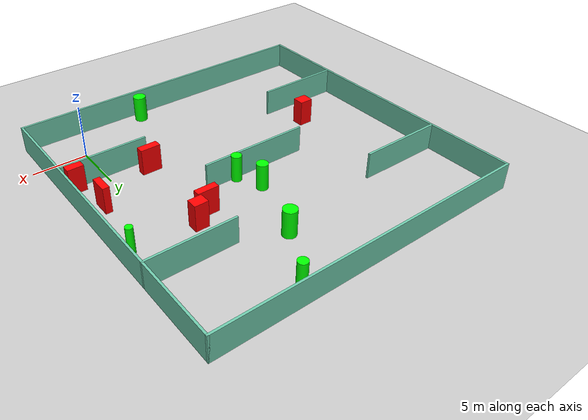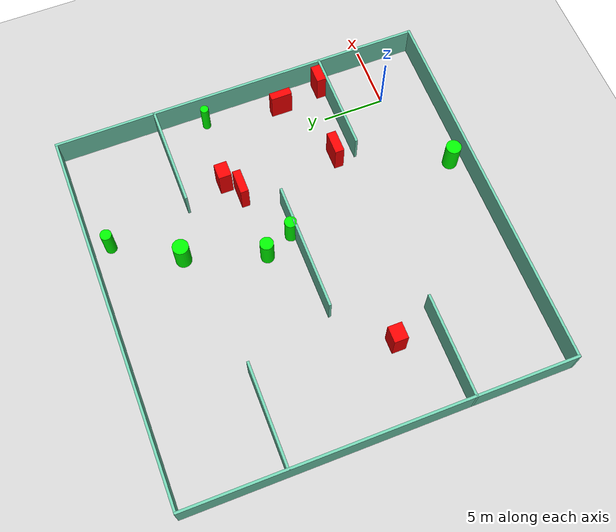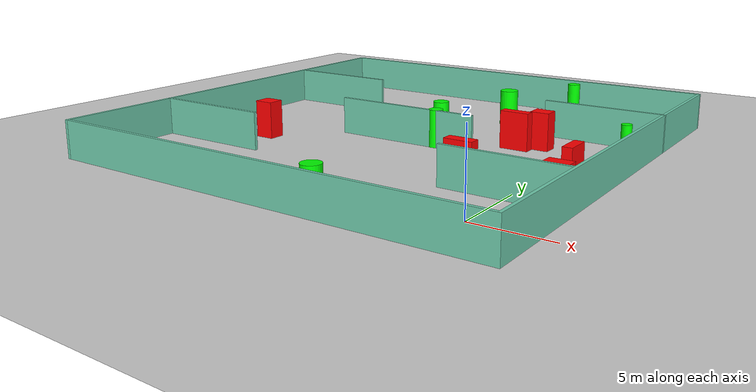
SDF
<sdf version="1.7">
 <world name="default">
  <light name="sun" type="directional">
   <pose>0 0 10 0 -0 0</pose>
   <diffuse>0.8 0.8 0.8 1</diffuse>
   <specular>0.2 0.2 0.2 1</specular>
   <attenuation>
    <range>1000</range>
    <constant>0.9</constant>
    <linear>0.01</linear>
    <quadratic>0.001</quadratic>
   </attenuation>
   <direction>-0.5 0.1 -0.9</direction>
   <spot><inner_angle>0</inner_angle><outer_angle>0</outer_angle><falloff>0</falloff></spot>
  </light>
  <model name="ground_plane">
   <static>1</static>
   <link name="link">
    <collision name="collision">
     <geometry><plane><normal>0 0 1</normal><size>100 100</size></plane></geometry>
     <surface>
      <contact><collide_bitmask>65535</collide_bitmask></contact>
      <friction><ode><mu>100</mu><mu2>50</mu2></ode></friction>
     </surface>
    </collision>
    <visual name="visual">
     <cast_shadows>0</cast_shadows>
     <geometry><plane><normal>0 0 1</normal><size>100 100</size></plane></geometry>
     <material>
      <script><uri>file://media/materials/scripts/gazebo.material</uri><name>Gazebo/Grey</name></script>
     </material>
    </visual>
   </link>
  </model>
  <gravity>0 0 -9.8</gravity>
  <magnetic_field>6e-06 2.3e-05 -4.2e-05</magnetic_field>
  <atmosphere type="adiabatic"/>
  <physics type="ode">
   <max_step_size>0.001</max_step_size>
   <real_time_factor>1</real_time_factor>
   <real_time_update_rate>1000</real_time_update_rate>
  </physics>
  <scene><ambient>0.4 0.4 0.4 1</ambient><background>0.7 0.7 0.7 1</background><shadows>1</shadows></scene>
  <spherical_coordinates>
   <surface_model>EARTH_WGS84</surface_model>
   <latitude_deg>0</latitude_deg>
   <longitude_deg>0</longitude_deg>
   <elevation>0</elevation>
   <heading_deg>0</heading_deg>
  </spherical_coordinates>
  <model name="my_base_walls">
   <link name="Wall_10">
    <collision name="Wall_10_Collision">
     <geometry><box><size>8.2 0.2 2.5</size></box></geometry>
     <pose>0 0 1.25 0 -0 0</pose>
    </collision>
    <visual name="Wall_10_Visual">
     <pose>0 0 1.25 0 -0 0</pose>
     <geometry><box><size>8.2 0.2 2.5</size></box></geometry>
     <material>
      <script><uri>file://media/materials/scripts/gazebo.material</uri><name>Gazebo/Grey</name></script>
      <ambient>0.435294 0.796078 0.67451 1</ambient>
     </material>
     <meta><layer>0</layer></meta>
    </visual>
    <pose>-11 -7 0 0 -0 0</pose>
   </link>
   <link name="Wall_12">
    <collision name="Wall_12_Collision">
     <geometry><box><size>8.2 0.2 2.5</size></box></geometry>
     <pose>0 0 1.25 0 -0 0</pose>
    </collision>
    <visual name="Wall_12_Visual">
     <pose>0 0 1.25 0 -0 0</pose>
     <geometry><box><size>8.2 0.2 2.5</size></box></geometry>
     <material>
      <script><uri>file://media/materials/scripts/gazebo.material</uri><name>Gazebo/Grey</name></script>
      <ambient>0.435294 0.796078 0.67451 1</ambient>
     </material>
     <meta><layer>0</layer></meta>
    </visual>
    <pose>-11 7 0 0 -0 0</pose>
   </link>
   <link name="Wall_14">
    <collision name="Wall_14_Collision">
     <geometry><box><size>8.2 0.2 2.5</size></box></geometry>
     <pose>0 0 1.25 0 -0 0</pose>
    </collision>
    <visual name="Wall_14_Visual">
     <pose>0 0 1.25 0 -0 0</pose>
     <geometry><box><size>8.2 0.2 2.5</size></box></geometry>
     <material>
      <script><uri>file://media/materials/scripts/gazebo.material</uri><name>Gazebo/Grey</name></script>
      <ambient>0.435294 0.796078 0.67451 1</ambient>
     </material>
     <meta><layer>0</layer></meta>
    </visual>
    <pose>11 7 0 0 -0 3.14159</pose>
   </link>
   <link name="Wall_16">
    <collision name="Wall_16_Collision">
     <geometry><box><size>10.2 0.2 2.5</size></box></geometry>
     <pose>0 0 1.25 0 -0 0</pose>
    </collision>
    <visual name="Wall_16_Visual">
     <pose>0 0 1.25 0 -0 0</pose>
     <geometry><box><size>10.2 0.2 2.5</size></box></geometry>
     <material>
      <script><uri>file://media/materials/scripts/gazebo.material</uri><name>Gazebo/Grey</name></script>
      <ambient>0.435294 0.796078 0.67451 1</ambient>
     </material>
     <meta><layer>0</layer></meta>
    </visual>
    <pose>0 0 0 0 -0 3.14159</pose>
   </link>
   <link name="Wall_2">
    <collision name="Wall_2_Collision">
     <geometry><box><size>30.2 0.2 2.5</size></box></geometry>
     <pose>0 0 1.25 0 -0 0</pose>
    </collision>
    <visual name="Wall_2_Visual">
     <pose>0 0 1.25 0 -0 0</pose>
     <geometry><box><size>30.2 0.2 2.5</size></box></geometry>
     <material>
      <script><uri>file://media/materials/scripts/gazebo.material</uri><name>Gazebo/Grey</name></script>
      <ambient>0.435294 0.796078 0.67451 1</ambient>
     </material>
     <meta><layer>0</layer></meta>
    </visual>
    <pose>0 -15 0 0 -0 3.14159</pose>
   </link>
   <link name="Wall_3">
    <collision name="Wall_3_Collision">
     <geometry><box><size>30.2 0.2 2.5</size></box></geometry>
     <pose>0 0 1.25 0 -0 0</pose>
    </collision>
    <visual name="Wall_3_Visual">
     <pose>0 0 1.25 0 -0 0</pose>
     <geometry><box><size>30.2 0.2 2.5</size></box></geometry>
     <material>
      <script><uri>file://media/materials/scripts/gazebo.material</uri><name>Gazebo/Grey</name></script>
      <ambient>0.435294 0.796078 0.67451 1</ambient>
     </material>
     <meta><layer>0</layer></meta>
    </visual>
    <pose>-15 0 0 0 -0 1.5708</pose>
   </link>
   <link name="Wall_4">
    <collision name="Wall_4_Collision">
     <geometry><box><size>30.2 0.2 2.5</size></box></geometry>
     <pose>0 0 1.25 0 -0 0</pose>
    </collision>
    <visual name="Wall_4_Visual">
     <pose>0 0 1.25 0 -0 0</pose>
     <geometry><box><size>30.2 0.2 2.5</size></box></geometry>
     <material>
      <script><uri>file://media/materials/scripts/gazebo.material</uri><name>Gazebo/Grey</name></script>
      <ambient>0.435294 0.796078 0.67451 1</ambient>
     </material>
     <meta><layer>0</layer></meta>
    </visual>
    <pose>0 15 0 0 -0 0</pose>
   </link>
   <link name="Wall_6">
    <collision name="Wall_6_Collision">
     <geometry><box><size>30.2 0.2 2.5</size></box></geometry>
     <pose>0 0 1.25 0 -0 0</pose>
    </collision>
    <visual name="Wall_6_Visual">
     <pose>0 0 1.25 0 -0 0</pose>
     <geometry><box><size>30.2 0.2 2.5</size></box></geometry>
     <material>
      <script><uri>file://media/materials/scripts/gazebo.material</uri><name>Gazebo/Grey</name></script>
      <ambient>0.435294 0.796078 0.67451 1</ambient>
     </material>
     <meta><layer>0</layer></meta>
    </visual>
    <pose>15 0 0 0 -0 1.5708</pose>
   </link>
   <link name="Wall_8">
    <collision name="Wall_8_Collision">
     <geometry><box><size>8.2 0.2 2.5</size></box></geometry>
     <pose>0 0 1.25 0 -0 0</pose>
    </collision>
    <visual name="Wall_8_Visual">
     <pose>0 0 1.25 0 -0 0</pose>
     <geometry><box><size>8.2 0.2 2.5</size></box></geometry>
     <material>
      <script><uri>file://media/materials/scripts/gazebo.material</uri><name>Gazebo/Grey</name></script>
      <ambient>0.435294 0.796078 0.67451 1</ambient>
     </material>
     <meta><layer>0</layer></meta>
    </visual>
    <pose>11 -7 0 0 -0 3.14159</pose>
   </link>
   <static>1</static>
   <pose>-11 11 0 0 -0 0</pose>
  </model>
  <model name="cylinder1">
   <static>1</static>
   <link name="link">
    <inertial>
     <mass>1</mass>
     <inertia><ixx>0.5</ixx><ixy>0</ixy><ixz>0</ixz><iyy>0.5</iyy><iyz>0</iyz><izz>1</izz></inertia>
    </inertial>
    <collision name="collision">
     <geometry><cylinder><radius>0.47423988613645685</radius><length>2.5</length></cylinder></geometry>
    </collision>
    <visual name="visual">
     <geometry><cylinder><radius>0.47423988613645685</radius><length>2.5</length></cylinder></geometry>
     <material>
      <ambient>0 1 0 1</ambient>
      <diffuse>0 1 0 1</diffuse>
      <specular>0.1 0.1 0.1 1</specular>
      <emissive>0 0 0 0</emissive>
     </material>
    </visual>
   </link>
   <pose>-8.803852133148578 11.309048972568718 1.25 0 0 0</pose>
  </model>
  <model name="cylinder2">
   <static>1</static>
   <link name="link">
    <inertial>
     <mass>1</mass>
     <inertia><ixx>0.5</ixx><ixy>0</ixy><ixz>0</ixz><iyy>0.5</iyy><iyz>0</iyz><izz>1</izz></inertia>
    </inertial>
    <collision name="collision">
     <geometry><cylinder><radius>0.6285189894224559</radius><length>2.5</length></cylinder></geometry>
    </collision>
    <visual name="visual">
     <geometry><cylinder><radius>0.6285189894224559</radius><length>2.5</length></cylinder></geometry>
     <material>
      <ambient>0 1 0 1</ambient>
      <diffuse>0 1 0 1</diffuse>
      <specular>0.1 0.1 0.1 1</specular>
      <emissive>0 0 0 0</emissive>
     </material>
    </visual>
   </link>
   <pose>-7.766783530125306 19.67847767642207 1.25 0 0 0</pose>
  </model>
  <model name="cylinder3">
   <static>1</static>
   <link name="link">
    <inertial>
     <mass>1</mass>
     <inertia><ixx>0.5</ixx><ixy>0</ixy><ixz>0</ixz><iyy>0.5</iyy><iyz>0</iyz><izz>1</izz></inertia>
    </inertial>
    <collision name="collision">
     <geometry><cylinder><radius>0.533804687813532</radius><length>2.5</length></cylinder></geometry>
    </collision>
    <visual name="visual">
     <geometry><cylinder><radius>0.533804687813532</radius><length>2.5</length></cylinder></geometry>
     <material>
      <ambient>0 1 0 1</ambient>
      <diffuse>0 1 0 1</diffuse>
      <specular>0.1 0.1 0.1 1</specular>
      <emissive>0 0 0 0</emissive>
     </material>
    </visual>
   </link>
   <pose>-9.823773041489531 13.603519925585282 1.25 0 0 0</pose>
  </model>
  <model name="cylinder4">
   <static>1</static>
   <link name="link">
    <inertial>
     <mass>1</mass>
     <inertia><ixx>0.5</ixx><ixy>0</ixy><ixz>0</ixz><iyy>0.5</iyy><iyz>0</iyz><izz>1</izz></inertia>
    </inertial>
    <collision name="collision">
     <geometry><cylinder><radius>0.32916209783930017</radius><length>2.5</length></cylinder></geometry>
    </collision>
    <visual name="visual">
     <geometry><cylinder><radius>0.32916209783930017</radius><length>2.5</length></cylinder></geometry>
     <material>
      <ambient>0 1 0 1</ambient>
      <diffuse>0 1 0 1</diffuse>
      <specular>0.1 0.1 0.1 1</specular>
      <emissive>0 0 0 0</emissive>
     </material>
    </visual>
   </link>
   <pose>2.9560479842510965 14.174675758921452 1.25 0 0 0</pose>
  </model>
  <model name="cylinder5">
   <static>1</static>
   <link name="link">
    <inertial>
     <mass>1</mass>
     <inertia><ixx>0.5</ixx><ixy>0</ixy><ixz>0</ixz><iyy>0.5</iyy><iyz>0</iyz><izz>1</izz></inertia>
    </inertial>
    <collision name="collision">
     <geometry><cylinder><radius>0.4435368482694195</radius><length>2.5</length></cylinder></geometry>
    </collision>
    <visual name="visual">
     <geometry><cylinder><radius>0.4435368482694195</radius><length>2.5</length></cylinder></geometry>
     <material>
      <ambient>0 1 0 1</ambient>
      <diffuse>0 1 0 1</diffuse>
      <specular>0.1 0.1 0.1 1</specular>
      <emissive>0 0 0 0</emissive>
     </material>
    </visual>
   </link>
   <pose>-4.822926478552782 24.57287397083936 1.25 0 0 0</pose>
  </model>
  <model name="cylinder6">
   <static>1</static>
   <link name="link">
    <inertial>
     <mass>1</mass>
     <inertia><ixx>0.5</ixx><ixy>0</ixy><ixz>0</ixz><iyy>0.5</iyy><iyz>0</iyz><izz>1</izz></inertia>
    </inertial>
    <collision name="collision">
     <geometry><cylinder><radius>0.6051358963247354</radius><length>2.5</length></cylinder></geometry>
    </collision>
    <visual name="visual">
     <geometry><cylinder><radius>0.6051358963247354</radius><length>2.5</length></cylinder></geometry>
     <material>
      <ambient>0 1 0 1</ambient>
      <diffuse>0 1 0 1</diffuse>
      <specular>0.1 0.1 0.1 1</specular>
      <emissive>0 0 0 0</emissive>
     </material>
    </visual>
   </link>
   <pose>-7.323268040811934 -2.854965975309291 1.25 0 0 0</pose>
  </model>
  <model name="box1">
   <static>1</static>
   <link name="link">
    <inertial>
     <mass>1</mass>
     <inertia><ixx>0.083</ixx><ixy>0</ixy><ixz>0</ixz><iyy>0.083</iyy><iyz>0</iyz><izz>0.083</izz></inertia>
    </inertial>
    <collision name="collision">
     <geometry><box><size>1.2991292141586241 1.1096419511946327 2.5</size></box></geometry>
    </collision>
    <visual name="visual">
     <geometry><box><size>1.2991292141586241 1.1096419511946327 2.5</size></box></geometry>
     <material>
      <ambient>1 0 0 1</ambient>
      <diffuse>1 0 0 1</diffuse>
      <specular>0.1 0.1 0.1 1</specular>
      <emissive>0 0 0 0</emissive>
     </material>
    </visual>
    <sensor name="my_contact" type="contact">
     <contact><collision>box_collision</collision><topic>__default_topic__</topic></contact>
    </sensor>
   </link>
   <pose>-19.756151385863575 7.242603789118354 1.25 0 0 0</pose>
  </model>
  <model name="box2">
   <static>1</static>
   <link name="link">
    <inertial>
     <mass>1</mass>
     <inertia><ixx>0.083</ixx><ixy>0</ixy><ixz>0</ixz><iyy>0.083</iyy><iyz>0</iyz><izz>0.083</izz></inertia>
    </inertial>
    <collision name="collision">
     <geometry><box><size>1.4677843738852165 0.7944427629341959 2.5</size></box></geometry>
    </collision>
    <visual name="visual">
     <geometry><box><size>1.4677843738852165 0.7944427629341959 2.5</size></box></geometry>
     <material>
      <ambient>1 0 0 1</ambient>
      <diffuse>1 0 0 1</diffuse>
      <specular>0.1 0.1 0.1 1</specular>
      <emissive>0 0 0 0</emissive>
     </material>
    </visual>
    <sensor name="my_contact" type="contact">
     <contact><collision>box_collision</collision><topic>__default_topic__</topic></contact>
    </sensor>
   </link>
   <pose>2.8705804772403027 4.463763148789065 1.25 0 0 0</pose>
  </model>
  <model name="box3">
   <static>1</static>
   <link name="link">
    <inertial>
     <mass>1</mass>
     <inertia><ixx>0.083</ixx><ixy>0</ixy><ixz>0</ixz><iyy>0.083</iyy><iyz>0</iyz><izz>0.083</izz></inertia>
    </inertial>
    <collision name="collision">
     <geometry><box><size>0.6176422821956198 1.717864950679185 2.5</size></box></geometry>
    </collision>
    <visual name="visual">
     <geometry><box><size>0.6176422821956198 1.717864950679185 2.5</size></box></geometry>
     <material>
      <ambient>1 0 0 1</ambient>
      <diffuse>1 0 0 1</diffuse>
      <specular>0.1 0.1 0.1 1</specular>
      <emissive>0 0 0 0</emissive>
     </material>
    </visual>
    <sensor name="my_contact" type="contact">
     <contact><collision>box_collision</collision><topic>__default_topic__</topic></contact>
    </sensor>
   </link>
   <pose>2.1322947896527644 8.026009550785819 1.25 0 0 0</pose>
  </model>
  <model name="box4">
   <static>1</static>
   <link name="link">
    <inertial>
     <mass>1</mass>
     <inertia><ixx>0.083</ixx><ixy>0</ixy><ixz>0</ixz><iyy>0.083</iyy><iyz>0</iyz><izz>0.083</izz></inertia>
    </inertial>
    <collision name="collision">
     <geometry><box><size>1.8446071105014736 0.7401996347172903 2.5</size></box></geometry>
    </collision>
    <visual name="visual">
     <geometry><box><size>1.8446071105014736 0.7401996347172903 2.5</size></box></geometry>
     <material>
      <ambient>1 0 0 1</ambient>
      <diffuse>1 0 0 1</diffuse>
      <specular>0.1 0.1 0.1 1</specular>
      <emissive>0 0 0 0</emissive>
     </material>
    </visual>
    <sensor name="my_contact" type="contact">
     <contact><collision>box_collision</collision><topic>__default_topic__</topic></contact>
    </sensor>
   </link>
   <pose>-3.5767253388803795 5.567870357493863 1.25 0 0 0</pose>
  </model>
  <model name="box5">
   <static>1</static>
   <link name="link">
    <inertial>
     <mass>1</mass>
     <inertia><ixx>0.083</ixx><ixy>0</ixy><ixz>0</ixz><iyy>0.083</iyy><iyz>0</iyz><izz>0.083</izz></inertia>
    </inertial>
    <collision name="collision">
     <geometry><box><size>1.951943797467752 0.6491573029614044 2.5</size></box></geometry>
    </collision>
    <visual name="visual">
     <geometry><box><size>1.951943797467752 0.6491573029614044 2.5</size></box></geometry>
     <material>
      <ambient>1 0 0 1</ambient>
      <diffuse>1 0 0 1</diffuse>
      <specular>0.1 0.1 0.1 1</specular>
      <emissive>0 0 0 0</emissive>
     </material>
    </visual>
    <sensor name="my_contact" type="contact">
     <contact><collision>box_collision</collision><topic>__default_topic__</topic></contact>
    </sensor>
   </link>
   <pose>-4.177841998194648 13.66713797820507 1.25 0 0 0</pose>
  </model>
  <model name="box6">
   <static>1</static>
   <link name="link">
    <inertial>
     <mass>1</mass>
     <inertia><ixx>0.083</ixx><ixy>0</ixy><ixz>0</ixz><iyy>0.083</iyy><iyz>0</iyz><izz>0.083</izz></inertia>
    </inertial>
    <collision name="collision">
     <geometry><box><size>1.2742735328304233 1.0338462309073533 2.5</size></box></geometry>
    </collision>
    <visual name="visual">
     <geometry><box><size>1.2742735328304233 1.0338462309073533 2.5</size></box></geometry>
     <material>
      <ambient>1 0 0 1</ambient>
      <diffuse>1 0 0 1</diffuse>
      <specular>0.1 0.1 0.1 1</specular>
      <emissive>0 0 0 0</emissive>
     </material>
    </visual>
    <sensor name="my_contact" type="contact">
     <contact><collision>box_collision</collision><topic>__default_topic__</topic></contact>
    </sensor>
   </link>
   <pose>-2.7673691837881513 14.627609634231874 1.25 0 0 0</pose>
  </model>
 </world>
</sdf>
